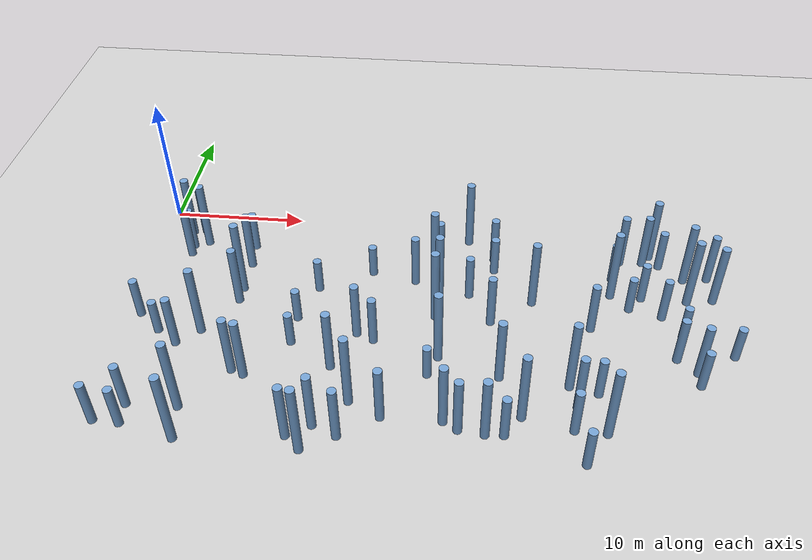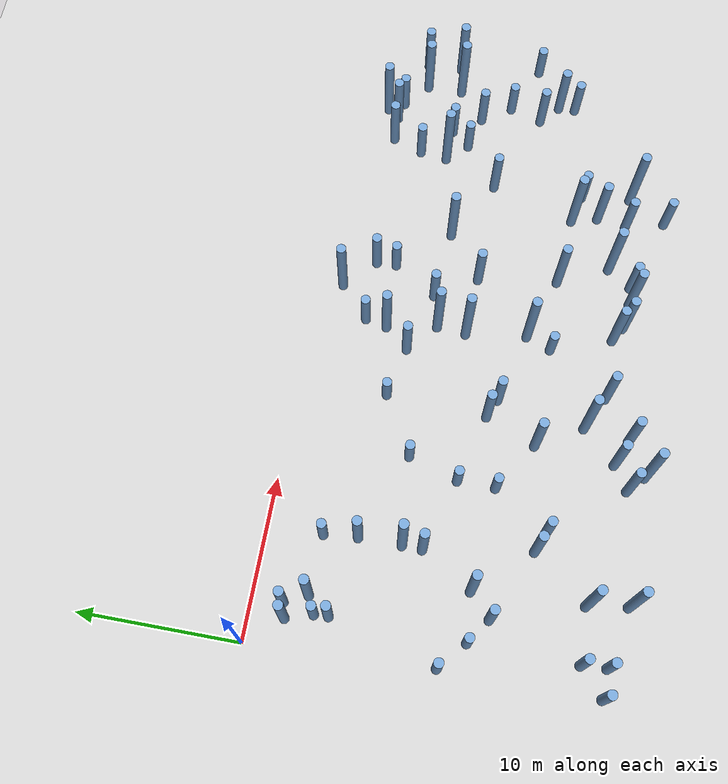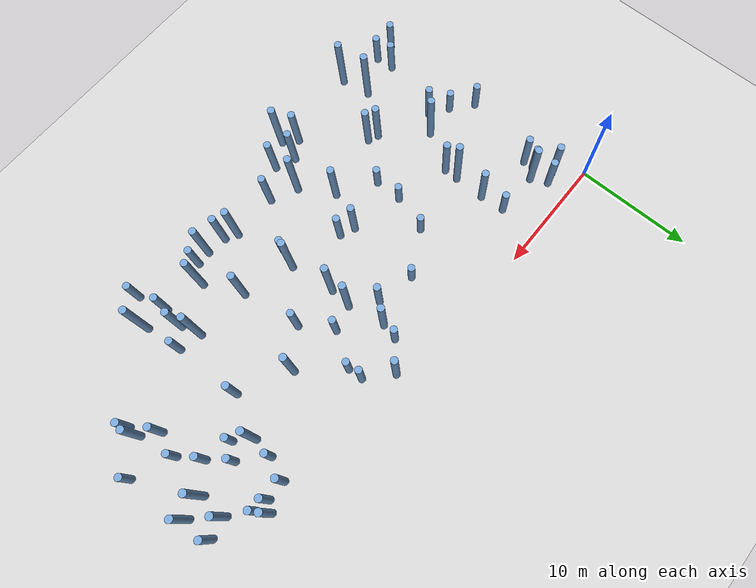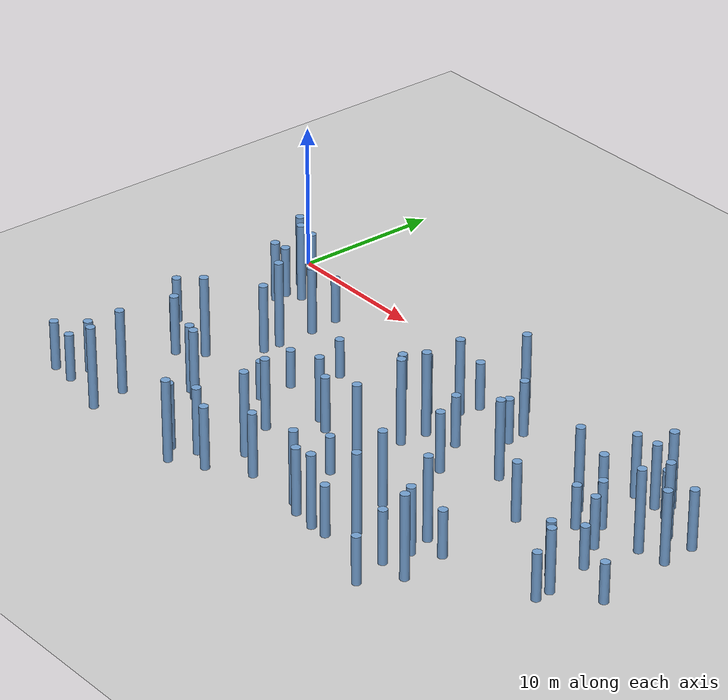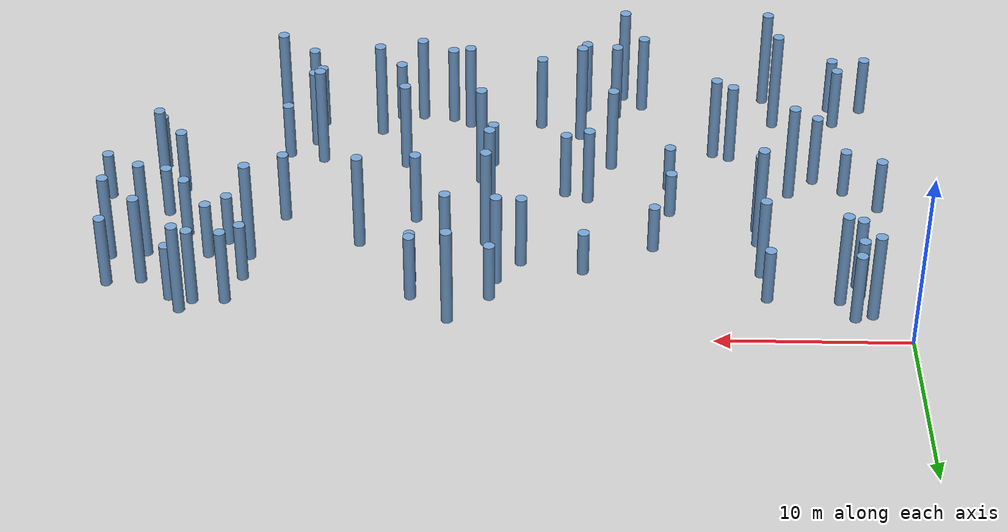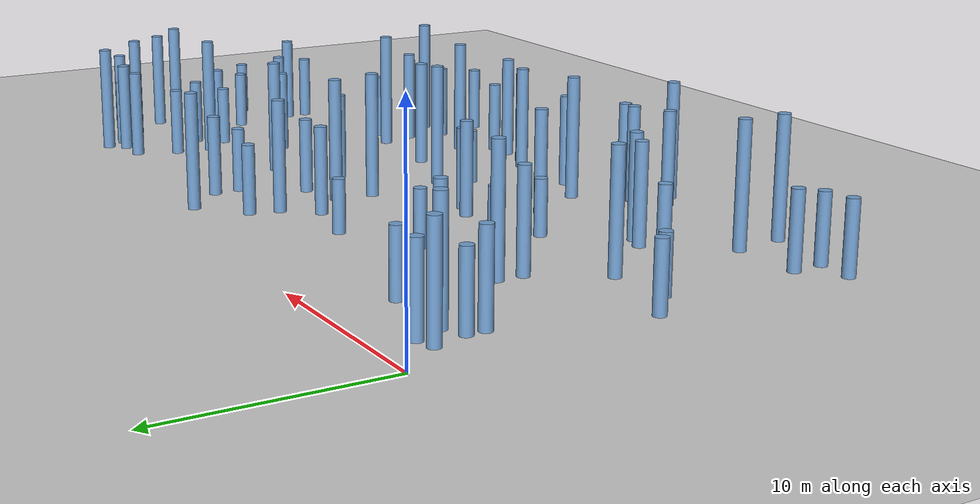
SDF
<sdf version="1.6">
 <world name="random_cylinder_world">
  <model name="ground_plane">
   <static>1</static>
   <link name="link">
    <collision name="collision">
     <geometry><plane><normal>0 0 1</normal><size>95.300000 95.300000</size></plane></geometry>
    </collision>
    <visual name="visual">
     <geometry><plane><normal>0 0 1</normal><size>95.300000 95.300000</size></plane></geometry>
     <material>
      <script><uri>file://media/materials/scripts/gazebo.material</uri><name>Gazebo/Grey</name></script>
     </material>
    </visual>
   </link>
  </model>
  <model name="cylinder_0003">
   <static>1</static>
   <pose>25.400087 -4.623986 1.535734 0 0 0</pose>
   <link name="link">
    <collision name="collision">
     <geometry><cylinder><radius>0.300000</radius><length>3.071469</length></cylinder></geometry>
    </collision>
    <visual name="visual">
     <geometry><cylinder><radius>0.300000</radius><length>3.071469</length></cylinder></geometry>
     <material><ambient>0.447 0.624 0.812 1</ambient><diffuse>0.447 0.624 0.812 1</diffuse></material>
    </visual>
   </link>
  </model>
  <model name="cylinder_0006">
   <static>1</static>
   <pose>37.342822 -8.503178 1.756261 0 0 0</pose>
   <link name="link">
    <collision name="collision">
     <geometry><cylinder><radius>0.300000</radius><length>3.512523</length></cylinder></geometry>
    </collision>
    <visual name="visual">
     <geometry><cylinder><radius>0.300000</radius><length>3.512523</length></cylinder></geometry>
     <material><ambient>0.447 0.624 0.812 1</ambient><diffuse>0.447 0.624 0.812 1</diffuse></material>
    </visual>
   </link>
  </model>
  <model name="cylinder_0013">
   <static>1</static>
   <pose>26.488561 -19.815314 1.756108 0 0 0</pose>
   <link name="link">
    <collision name="collision">
     <geometry><cylinder><radius>0.300000</radius><length>3.512217</length></cylinder></geometry>
    </collision>
    <visual name="visual">
     <geometry><cylinder><radius>0.300000</radius><length>3.512217</length></cylinder></geometry>
     <material><ambient>0.447 0.624 0.812 1</ambient><diffuse>0.447 0.624 0.812 1</diffuse></material>
    </visual>
   </link>
  </model>
  <model name="cylinder_0021">
   <static>1</static>
   <pose>41.162562 -6.502015 2.496331 0 0 0</pose>
   <link name="link">
    <collision name="collision">
     <geometry><cylinder><radius>0.300000</radius><length>4.992661</length></cylinder></geometry>
    </collision>
    <visual name="visual">
     <geometry><cylinder><radius>0.300000</radius><length>4.992661</length></cylinder></geometry>
     <material><ambient>0.447 0.624 0.812 1</ambient><diffuse>0.447 0.624 0.812 1</diffuse></material>
    </visual>
   </link>
  </model>
  <model name="cylinder_0024">
   <static>1</static>
   <pose>7.257771 -8.145522 2.987956 0 0 0</pose>
   <link name="link">
    <collision name="collision">
     <geometry><cylinder><radius>0.300000</radius><length>5.975913</length></cylinder></geometry>
    </collision>
    <visual name="visual">
     <geometry><cylinder><radius>0.300000</radius><length>5.975913</length></cylinder></geometry>
     <material><ambient>0.447 0.624 0.812 1</ambient><diffuse>0.447 0.624 0.812 1</diffuse></material>
    </visual>
   </link>
  </model>
  <model name="cylinder_0032">
   <static>1</static>
   <pose>12.769695 -7.644362 1.345859 0 0 0</pose>
   <link name="link">
    <collision name="collision">
     <geometry><cylinder><radius>0.300000</radius><length>2.691719</length></cylinder></geometry>
    </collision>
    <visual name="visual">
     <geometry><cylinder><radius>0.300000</radius><length>2.691719</length></cylinder></geometry>
     <material><ambient>0.447 0.624 0.812 1</ambient><diffuse>0.447 0.624 0.812 1</diffuse></material>
    </visual>
   </link>
  </model>
  <model name="cylinder_0034">
   <static>1</static>
   <pose>2.337418 -3.776096 1.756916 0 0 0</pose>
   <link name="link">
    <collision name="collision">
     <geometry><cylinder><radius>0.300000</radius><length>3.513832</length></cylinder></geometry>
    </collision>
    <visual name="visual">
     <geometry><cylinder><radius>0.300000</radius><length>3.513832</length></cylinder></geometry>
     <material><ambient>0.447 0.624 0.812 1</ambient><diffuse>0.447 0.624 0.812 1</diffuse></material>
    </visual>
   </link>
  </model>
  <model name="cylinder_0039">
   <static>1</static>
   <pose>37.041497 -2.067759 2.631288 0 0 0</pose>
   <link name="link">
    <collision name="collision">
     <geometry><cylinder><radius>0.300000</radius><length>5.262577</length></cylinder></geometry>
    </collision>
    <visual name="visual">
     <geometry><cylinder><radius>0.300000</radius><length>5.262577</length></cylinder></geometry>
     <material><ambient>0.447 0.624 0.812 1</ambient><diffuse>0.447 0.624 0.812 1</diffuse></material>
    </visual>
   </link>
  </model>
  <model name="cylinder_0044">
   <static>1</static>
   <pose>0.592058 -11.316370 1.572956 0 0 0</pose>
   <link name="link">
    <collision name="collision">
     <geometry><cylinder><radius>0.300000</radius><length>3.145912</length></cylinder></geometry>
    </collision>
    <visual name="visual">
     <geometry><cylinder><radius>0.300000</radius><length>3.145912</length></cylinder></geometry>
     <material><ambient>0.447 0.624 0.812 1</ambient><diffuse>0.447 0.624 0.812 1</diffuse></material>
    </visual>
   </link>
  </model>
  <model name="cylinder_0046">
   <static>1</static>
   <pose>36.449462 -2.827445 2.220992 0 0 0</pose>
   <link name="link">
    <collision name="collision">
     <geometry><cylinder><radius>0.300000</radius><length>4.441983</length></cylinder></geometry>
    </collision>
    <visual name="visual">
     <geometry><cylinder><radius>0.300000</radius><length>4.441983</length></cylinder></geometry>
     <material><ambient>0.447 0.624 0.812 1</ambient><diffuse>0.447 0.624 0.812 1</diffuse></material>
    </visual>
   </link>
  </model>
  <model name="cylinder_0047">
   <static>1</static>
   <pose>11.732520 -13.136620 1.326364 0 0 0</pose>
   <link name="link">
    <collision name="collision">
     <geometry><cylinder><radius>0.300000</radius><length>2.652729</length></cylinder></geometry>
    </collision>
    <visual name="visual">
     <geometry><cylinder><radius>0.300000</radius><length>2.652729</length></cylinder></geometry>
     <material><ambient>0.447 0.624 0.812 1</ambient><diffuse>0.447 0.624 0.812 1</diffuse></material>
    </visual>
   </link>
  </model>
  <model name="cylinder_0048">
   <static>1</static>
   <pose>21.289381 -15.260789 1.299075 0 0 0</pose>
   <link name="link">
    <collision name="collision">
     <geometry><cylinder><radius>0.300000</radius><length>2.598151</length></cylinder></geometry>
    </collision>
    <visual name="visual">
     <geometry><cylinder><radius>0.300000</radius><length>2.598151</length></cylinder></geometry>
     <material><ambient>0.447 0.624 0.812 1</ambient><diffuse>0.447 0.624 0.812 1</diffuse></material>
    </visual>
   </link>
  </model>
  <model name="cylinder_0051">
   <static>1</static>
   <pose>41.062041 -4.219425 2.053434 0 0 0</pose>
   <link name="link">
    <collision name="collision">
     <geometry><cylinder><radius>0.300000</radius><length>4.106868</length></cylinder></geometry>
    </collision>
    <visual name="visual">
     <geometry><cylinder><radius>0.300000</radius><length>4.106868</length></cylinder></geometry>
     <material><ambient>0.447 0.624 0.812 1</ambient><diffuse>0.447 0.624 0.812 1</diffuse></material>
    </visual>
   </link>
  </model>
  <model name="cylinder_0052">
   <static>1</static>
   <pose>21.289292 -3.367641 1.649210 0 0 0</pose>
   <link name="link">
    <collision name="collision">
     <geometry><cylinder><radius>0.300000</radius><length>3.298420</length></cylinder></geometry>
    </collision>
    <visual name="visual">
     <geometry><cylinder><radius>0.300000</radius><length>3.298420</length></cylinder></geometry>
     <material><ambient>0.447 0.624 0.812 1</ambient><diffuse>0.447 0.624 0.812 1</diffuse></material>
    </visual>
   </link>
  </model>
  <model name="cylinder_0059">
   <static>1</static>
   <pose>2.251523 -19.429712 1.798195 0 0 0</pose>
   <link name="link">
    <collision name="collision">
     <geometry><cylinder><radius>0.300000</radius><length>3.596389</length></cylinder></geometry>
    </collision>
    <visual name="visual">
     <geometry><cylinder><radius>0.300000</radius><length>3.596389</length></cylinder></geometry>
     <material><ambient>0.447 0.624 0.812 1</ambient><diffuse>0.447 0.624 0.812 1</diffuse></material>
    </visual>
   </link>
  </model>
  <model name="cylinder_0060">
   <static>1</static>
   <pose>5.650153 -19.351967 2.914306 0 0 0</pose>
   <link name="link">
    <collision name="collision">
     <geometry><cylinder><radius>0.300000</radius><length>5.828613</length></cylinder></geometry>
    </collision>
    <visual name="visual">
     <geometry><cylinder><radius>0.300000</radius><length>5.828613</length></cylinder></geometry>
     <material><ambient>0.447 0.624 0.812 1</ambient><diffuse>0.447 0.624 0.812 1</diffuse></material>
    </visual>
   </link>
  </model>
  <model name="cylinder_0065">
   <static>1</static>
   <pose>34.792740 -2.870810 2.163958 0 0 0</pose>
   <link name="link">
    <collision name="collision">
     <geometry><cylinder><radius>0.300000</radius><length>4.327917</length></cylinder></geometry>
    </collision>
    <visual name="visual">
     <geometry><cylinder><radius>0.300000</radius><length>4.327917</length></cylinder></geometry>
     <material><ambient>0.447 0.624 0.812 1</ambient><diffuse>0.447 0.624 0.812 1</diffuse></material>
    </visual>
   </link>
  </model>
  <model name="cylinder_0069">
   <static>1</static>
   <pose>21.893047 -13.679503 2.926847 0 0 0</pose>
   <link name="link">
    <collision name="collision">
     <geometry><cylinder><radius>0.300000</radius><length>5.853694</length></cylinder></geometry>
    </collision>
    <visual name="visual">
     <geometry><cylinder><radius>0.300000</radius><length>5.853694</length></cylinder></geometry>
     <material><ambient>0.447 0.624 0.812 1</ambient><diffuse>0.447 0.624 0.812 1</diffuse></material>
    </visual>
   </link>
  </model>
  <model name="cylinder_0070">
   <static>1</static>
   <pose>34.070242 -4.819793 1.674462 0 0 0</pose>
   <link name="link">
    <collision name="collision">
     <geometry><cylinder><radius>0.300000</radius><length>3.348925</length></cylinder></geometry>
    </collision>
    <visual name="visual">
     <geometry><cylinder><radius>0.300000</radius><length>3.348925</length></cylinder></geometry>
     <material><ambient>0.447 0.624 0.812 1</ambient><diffuse>0.447 0.624 0.812 1</diffuse></material>
    </visual>
   </link>
  </model>
  <model name="cylinder_0073">
   <static>1</static>
   <pose>41.866162 -11.896257 1.372190 0 0 0</pose>
   <link name="link">
    <collision name="collision">
     <geometry><cylinder><radius>0.300000</radius><length>2.744380</length></cylinder></geometry>
    </collision>
    <visual name="visual">
     <geometry><cylinder><radius>0.300000</radius><length>2.744380</length></cylinder></geometry>
     <material><ambient>0.447 0.624 0.812 1</ambient><diffuse>0.447 0.624 0.812 1</diffuse></material>
    </visual>
   </link>
  </model>
  <model name="cylinder_0078">
   <static>1</static>
   <pose>8.285230 -15.977573 2.356307 0 0 0</pose>
   <link name="link">
    <collision name="collision">
     <geometry><cylinder><radius>0.300000</radius><length>4.712614</length></cylinder></geometry>
    </collision>
    <visual name="visual">
     <geometry><cylinder><radius>0.300000</radius><length>4.712614</length></cylinder></geometry>
     <material><ambient>0.447 0.624 0.812 1</ambient><diffuse>0.447 0.624 0.812 1</diffuse></material>
    </visual>
   </link>
  </model>
  <model name="cylinder_0082">
   <static>1</static>
   <pose>3.369687 -3.270655 2.712815 0 0 0</pose>
   <link name="link">
    <collision name="collision">
     <geometry><cylinder><radius>0.300000</radius><length>5.425631</length></cylinder></geometry>
    </collision>
    <visual name="visual">
     <geometry><cylinder><radius>0.300000</radius><length>5.425631</length></cylinder></geometry>
     <material><ambient>0.447 0.624 0.812 1</ambient><diffuse>0.447 0.624 0.812 1</diffuse></material>
    </visual>
   </link>
  </model>
  <model name="cylinder_0087">
   <static>1</static>
   <pose>31.510922 -21.557376 1.628455 0 0 0</pose>
   <link name="link">
    <collision name="collision">
     <geometry><cylinder><radius>0.300000</radius><length>3.256910</length></cylinder></geometry>
    </collision>
    <visual name="visual">
     <geometry><cylinder><radius>0.300000</radius><length>3.256910</length></cylinder></geometry>
     <material><ambient>0.447 0.624 0.812 1</ambient><diffuse>0.447 0.624 0.812 1</diffuse></material>
    </visual>
   </link>
  </model>
  <model name="cylinder_0088">
   <static>1</static>
   <pose>2.315319 -12.811745 1.361996 0 0 0</pose>
   <link name="link">
    <collision name="collision">
     <geometry><cylinder><radius>0.300000</radius><length>2.723992</length></cylinder></geometry>
    </collision>
    <visual name="visual">
     <geometry><cylinder><radius>0.300000</radius><length>2.723992</length></cylinder></geometry>
     <material><ambient>0.447 0.624 0.812 1</ambient><diffuse>0.447 0.624 0.812 1</diffuse></material>
    </visual>
   </link>
  </model>
  <model name="cylinder_0091">
   <static>1</static>
   <pose>23.680675 -7.405819 1.782084 0 0 0</pose>
   <link name="link">
    <collision name="collision">
     <geometry><cylinder><radius>0.300000</radius><length>3.564169</length></cylinder></geometry>
    </collision>
    <visual name="visual">
     <geometry><cylinder><radius>0.300000</radius><length>3.564169</length></cylinder></geometry>
     <material><ambient>0.447 0.624 0.812 1</ambient><diffuse>0.447 0.624 0.812 1</diffuse></material>
    </visual>
   </link>
  </model>
  <model name="cylinder_0093">
   <static>1</static>
   <pose>16.131592 -11.937747 2.245154 0 0 0</pose>
   <link name="link">
    <collision name="collision">
     <geometry><cylinder><radius>0.300000</radius><length>4.490308</length></cylinder></geometry>
    </collision>
    <visual name="visual">
     <geometry><cylinder><radius>0.300000</radius><length>4.490308</length></cylinder></geometry>
     <material><ambient>0.447 0.624 0.812 1</ambient><diffuse>0.447 0.624 0.812 1</diffuse></material>
    </visual>
   </link>
  </model>
  <model name="cylinder_0102">
   <static>1</static>
   <pose>33.852152 -6.586515 2.906985 0 0 0</pose>
   <link name="link">
    <collision name="collision">
     <geometry><cylinder><radius>0.300000</radius><length>5.813970</length></cylinder></geometry>
    </collision>
    <visual name="visual">
     <geometry><cylinder><radius>0.300000</radius><length>5.813970</length></cylinder></geometry>
     <material><ambient>0.447 0.624 0.812 1</ambient><diffuse>0.447 0.624 0.812 1</diffuse></material>
    </visual>
   </link>
  </model>
  <model name="cylinder_0104">
   <static>1</static>
   <pose>1.822756 -2.127710 2.516312 0 0 0</pose>
   <link name="link">
    <collision name="collision">
     <geometry><cylinder><radius>0.300000</radius><length>5.032623</length></cylinder></geometry>
    </collision>
    <visual name="visual">
     <geometry><cylinder><radius>0.300000</radius><length>5.032623</length></cylinder></geometry>
     <material><ambient>0.447 0.624 0.812 1</ambient><diffuse>0.447 0.624 0.812 1</diffuse></material>
    </visual>
   </link>
  </model>
  <model name="cylinder_0105">
   <static>1</static>
   <pose>14.799435 -15.117011 2.473247 0 0 0</pose>
   <link name="link">
    <collision name="collision">
     <geometry><cylinder><radius>0.300000</radius><length>4.946493</length></cylinder></geometry>
    </collision>
    <visual name="visual">
     <geometry><cylinder><radius>0.300000</radius><length>4.946493</length></cylinder></geometry>
     <material><ambient>0.447 0.624 0.812 1</ambient><diffuse>0.447 0.624 0.812 1</diffuse></material>
    </visual>
   </link>
  </model>
  <model name="cylinder_0113">
   <static>1</static>
   <pose>23.386451 -1.478228 2.762739 0 0 0</pose>
   <link name="link">
    <collision name="collision">
     <geometry><cylinder><radius>0.300000</radius><length>5.525478</length></cylinder></geometry>
    </collision>
    <visual name="visual">
     <geometry><cylinder><radius>0.300000</radius><length>5.525478</length></cylinder></geometry>
     <material><ambient>0.447 0.624 0.812 1</ambient><diffuse>0.447 0.624 0.812 1</diffuse></material>
    </visual>
   </link>
  </model>
  <model name="cylinder_0121">
   <static>1</static>
   <pose>6.037207 -21.826309 2.851733 0 0 0</pose>
   <link name="link">
    <collision name="collision">
     <geometry><cylinder><radius>0.300000</radius><length>5.703466</length></cylinder></geometry>
    </collision>
    <visual name="visual">
     <geometry><cylinder><radius>0.300000</radius><length>5.703466</length></cylinder></geometry>
     <material><ambient>0.447 0.624 0.812 1</ambient><diffuse>0.447 0.624 0.812 1</diffuse></material>
    </visual>
   </link>
  </model>
  <model name="cylinder_0124">
   <static>1</static>
   <pose>37.929776 -12.475475 1.888538 0 0 0</pose>
   <link name="link">
    <collision name="collision">
     <geometry><cylinder><radius>0.300000</radius><length>3.777076</length></cylinder></geometry>
    </collision>
    <visual name="visual">
     <geometry><cylinder><radius>0.300000</radius><length>3.777076</length></cylinder></geometry>
     <material><ambient>0.447 0.624 0.812 1</ambient><diffuse>0.447 0.624 0.812 1</diffuse></material>
    </visual>
   </link>
  </model>
  <model name="cylinder_0128">
   <static>1</static>
   <pose>7.080046 -3.406542 1.571870 0 0 0</pose>
   <link name="link">
    <collision name="collision">
     <geometry><cylinder><radius>0.300000</radius><length>3.143740</length></cylinder></geometry>
    </collision>
    <visual name="visual">
     <geometry><cylinder><radius>0.300000</radius><length>3.143740</length></cylinder></geometry>
     <material><ambient>0.447 0.624 0.812 1</ambient><diffuse>0.447 0.624 0.812 1</diffuse></material>
    </visual>
   </link>
  </model>
  <model name="cylinder_0133">
   <static>1</static>
   <pose>26.044266 -15.105404 2.573613 0 0 0</pose>
   <link name="link">
    <collision name="collision">
     <geometry><cylinder><radius>0.300000</radius><length>5.147226</length></cylinder></geometry>
    </collision>
    <visual name="visual">
     <geometry><cylinder><radius>0.300000</radius><length>5.147226</length></cylinder></geometry>
     <material><ambient>0.447 0.624 0.812 1</ambient><diffuse>0.447 0.624 0.812 1</diffuse></material>
    </visual>
   </link>
  </model>
  <model name="cylinder_0140">
   <static>1</static>
   <pose>20.972011 -4.764908 2.645382 0 0 0</pose>
   <link name="link">
    <collision name="collision">
     <geometry><cylinder><radius>0.300000</radius><length>5.290764</length></cylinder></geometry>
    </collision>
    <visual name="visual">
     <geometry><cylinder><radius>0.300000</radius><length>5.290764</length></cylinder></geometry>
     <material><ambient>0.447 0.624 0.812 1</ambient><diffuse>0.447 0.624 0.812 1</diffuse></material>
    </visual>
   </link>
  </model>
  <model name="cylinder_0145">
   <static>1</static>
   <pose>30.641212 -15.499562 2.893133 0 0 0</pose>
   <link name="link">
    <collision name="collision">
     <geometry><cylinder><radius>0.300000</radius><length>5.786265</length></cylinder></geometry>
    </collision>
    <visual name="visual">
     <geometry><cylinder><radius>0.300000</radius><length>5.786265</length></cylinder></geometry>
     <material><ambient>0.447 0.624 0.812 1</ambient><diffuse>0.447 0.624 0.812 1</diffuse></material>
    </visual>
   </link>
  </model>
  <model name="cylinder_0155">
   <static>1</static>
   <pose>7.227832 -9.378220 2.378105 0 0 0</pose>
   <link name="link">
    <collision name="collision">
     <geometry><cylinder><radius>0.300000</radius><length>4.756211</length></cylinder></geometry>
    </collision>
    <visual name="visual">
     <geometry><cylinder><radius>0.300000</radius><length>4.756211</length></cylinder></geometry>
     <material><ambient>0.447 0.624 0.812 1</ambient><diffuse>0.447 0.624 0.812 1</diffuse></material>
    </visual>
   </link>
  </model>
  <model name="cylinder_0157">
   <static>1</static>
   <pose>28.200143 -7.827095 2.752070 0 0 0</pose>
   <link name="link">
    <collision name="collision">
     <geometry><cylinder><radius>0.300000</radius><length>5.504139</length></cylinder></geometry>
    </collision>
    <visual name="visual">
     <geometry><cylinder><radius>0.300000</radius><length>5.504139</length></cylinder></geometry>
     <material><ambient>0.447 0.624 0.812 1</ambient><diffuse>0.447 0.624 0.812 1</diffuse></material>
    </visual>
   </link>
  </model>
  <model name="cylinder_0162">
   <static>1</static>
   <pose>21.549404 -7.952345 2.908490 0 0 0</pose>
   <link name="link">
    <collision name="collision">
     <geometry><cylinder><radius>0.300000</radius><length>5.816980</length></cylinder></geometry>
    </collision>
    <visual name="visual">
     <geometry><cylinder><radius>0.300000</radius><length>5.816980</length></cylinder></geometry>
     <material><ambient>0.447 0.624 0.812 1</ambient><diffuse>0.447 0.624 0.812 1</diffuse></material>
    </visual>
   </link>
  </model>
  <model name="cylinder_0163">
   <static>1</static>
   <pose>2.379318 -4.641895 2.099099 0 0 0</pose>
   <link name="link">
    <collision name="collision">
     <geometry><cylinder><radius>0.300000</radius><length>4.198197</length></cylinder></geometry>
    </collision>
    <visual name="visual">
     <geometry><cylinder><radius>0.300000</radius><length>4.198197</length></cylinder></geometry>
     <material><ambient>0.447 0.624 0.812 1</ambient><diffuse>0.447 0.624 0.812 1</diffuse></material>
    </visual>
   </link>
  </model>
  <model name="cylinder_0164">
   <static>1</static>
   <pose>11.764676 -10.778414 1.310249 0 0 0</pose>
   <link name="link">
    <collision name="collision">
     <geometry><cylinder><radius>0.300000</radius><length>2.620497</length></cylinder></geometry>
    </collision>
    <visual name="visual">
     <geometry><cylinder><radius>0.300000</radius><length>2.620497</length></cylinder></geometry>
     <material><ambient>0.447 0.624 0.812 1</ambient><diffuse>0.447 0.624 0.812 1</diffuse></material>
    </visual>
   </link>
  </model>
  <model name="cylinder_0169">
   <static>1</static>
   <pose>19.695032 -6.283462 2.070440 0 0 0</pose>
   <link name="link">
    <collision name="collision">
     <geometry><cylinder><radius>0.300000</radius><length>4.140880</length></cylinder></geometry>
    </collision>
    <visual name="visual">
     <geometry><cylinder><radius>0.300000</radius><length>4.140880</length></cylinder></geometry>
     <material><ambient>0.447 0.624 0.812 1</ambient><diffuse>0.447 0.624 0.812 1</diffuse></material>
    </visual>
   </link>
  </model>
  <model name="cylinder_0176">
   <static>1</static>
   <pose>14.459822 -20.075022 2.307126 0 0 0</pose>
   <link name="link">
    <collision name="collision">
     <geometry><cylinder><radius>0.300000</radius><length>4.614252</length></cylinder></geometry>
    </collision>
    <visual name="visual">
     <geometry><cylinder><radius>0.300000</radius><length>4.614252</length></cylinder></geometry>
     <material><ambient>0.447 0.624 0.812 1</ambient><diffuse>0.447 0.624 0.812 1</diffuse></material>
    </visual>
   </link>
  </model>
  <model name="cylinder_0180">
   <static>1</static>
   <pose>25.307085 -10.028063 2.085140 0 0 0</pose>
   <link name="link">
    <collision name="collision">
     <geometry><cylinder><radius>0.300000</radius><length>4.170280</length></cylinder></geometry>
    </collision>
    <visual name="visual">
     <geometry><cylinder><radius>0.300000</radius><length>4.170280</length></cylinder></geometry>
     <material><ambient>0.447 0.624 0.812 1</ambient><diffuse>0.447 0.624 0.812 1</diffuse></material>
    </visual>
   </link>
  </model>
  <model name="cylinder_0188">
   <static>1</static>
   <pose>2.717203 -1.878692 2.012310 0 0 0</pose>
   <link name="link">
    <collision name="collision">
     <geometry><cylinder><radius>0.300000</radius><length>4.024621</length></cylinder></geometry>
    </collision>
    <visual name="visual">
     <geometry><cylinder><radius>0.300000</radius><length>4.024621</length></cylinder></geometry>
     <material><ambient>0.447 0.624 0.812 1</ambient><diffuse>0.447 0.624 0.812 1</diffuse></material>
    </visual>
   </link>
  </model>
  <model name="cylinder_0190">
   <static>1</static>
   <pose>27.543556 -18.298104 2.813191 0 0 0</pose>
   <link name="link">
    <collision name="collision">
     <geometry><cylinder><radius>0.300000</radius><length>5.626381</length></cylinder></geometry>
    </collision>
    <visual name="visual">
     <geometry><cylinder><radius>0.300000</radius><length>5.626381</length></cylinder></geometry>
     <material><ambient>0.447 0.624 0.812 1</ambient><diffuse>0.447 0.624 0.812 1</diffuse></material>
    </visual>
   </link>
  </model>
  <model name="cylinder_0191">
   <static>1</static>
   <pose>18.631439 -19.070829 2.213769 0 0 0</pose>
   <link name="link">
    <collision name="collision">
     <geometry><cylinder><radius>0.300000</radius><length>4.427538</length></cylinder></geometry>
    </collision>
    <visual name="visual">
     <geometry><cylinder><radius>0.300000</radius><length>4.427538</length></cylinder></geometry>
     <material><ambient>0.447 0.624 0.812 1</ambient><diffuse>0.447 0.624 0.812 1</diffuse></material>
    </visual>
   </link>
  </model>
  <model name="cylinder_0192">
   <static>1</static>
   <pose>36.047061 -6.707656 1.627035 0 0 0</pose>
   <link name="link">
    <collision name="collision">
     <geometry><cylinder><radius>0.300000</radius><length>3.254069</length></cylinder></geometry>
    </collision>
    <visual name="visual">
     <geometry><cylinder><radius>0.300000</radius><length>3.254069</length></cylinder></geometry>
     <material><ambient>0.447 0.624 0.812 1</ambient><diffuse>0.447 0.624 0.812 1</diffuse></material>
    </visual>
   </link>
  </model>
  <model name="cylinder_0196">
   <static>1</static>
   <pose>39.243683 -14.703005 1.623256 0 0 0</pose>
   <link name="link">
    <collision name="collision">
     <geometry><cylinder><radius>0.300000</radius><length>3.246513</length></cylinder></geometry>
    </collision>
    <visual name="visual">
     <geometry><cylinder><radius>0.300000</radius><length>3.246513</length></cylinder></geometry>
     <material><ambient>0.447 0.624 0.812 1</ambient><diffuse>0.447 0.624 0.812 1</diffuse></material>
    </visual>
   </link>
  </model>
  <model name="cylinder_0197">
   <static>1</static>
   <pose>32.915342 -19.143932 2.892927 0 0 0</pose>
   <link name="link">
    <collision name="collision">
     <geometry><cylinder><radius>0.300000</radius><length>5.785853</length></cylinder></geometry>
    </collision>
    <visual name="visual">
     <geometry><cylinder><radius>0.300000</radius><length>5.785853</length></cylinder></geometry>
     <material><ambient>0.447 0.624 0.812 1</ambient><diffuse>0.447 0.624 0.812 1</diffuse></material>
    </visual>
   </link>
  </model>
  <model name="cylinder_0200">
   <static>1</static>
   <pose>32.278458 -10.081249 2.029561 0 0 0</pose>
   <link name="link">
    <collision name="collision">
     <geometry><cylinder><radius>0.300000</radius><length>4.059122</length></cylinder></geometry>
    </collision>
    <visual name="visual">
     <geometry><cylinder><radius>0.300000</radius><length>4.059122</length></cylinder></geometry>
     <material><ambient>0.447 0.624 0.812 1</ambient><diffuse>0.447 0.624 0.812 1</diffuse></material>
    </visual>
   </link>
  </model>
  <model name="cylinder_0202">
   <static>1</static>
   <pose>32.525450 -15.961042 1.623327 0 0 0</pose>
   <link name="link">
    <collision name="collision">
     <geometry><cylinder><radius>0.300000</radius><length>3.246654</length></cylinder></geometry>
    </collision>
    <visual name="visual">
     <geometry><cylinder><radius>0.300000</radius><length>3.246654</length></cylinder></geometry>
     <material><ambient>0.447 0.624 0.812 1</ambient><diffuse>0.447 0.624 0.812 1</diffuse></material>
    </visual>
   </link>
  </model>
  <model name="cylinder_0206">
   <static>1</static>
   <pose>12.949468 -21.006072 2.290835 0 0 0</pose>
   <link name="link">
    <collision name="collision">
     <geometry><cylinder><radius>0.300000</radius><length>4.581671</length></cylinder></geometry>
    </collision>
    <visual name="visual">
     <geometry><cylinder><radius>0.300000</radius><length>4.581671</length></cylinder></geometry>
     <material><ambient>0.447 0.624 0.812 1</ambient><diffuse>0.447 0.624 0.812 1</diffuse></material>
    </visual>
   </link>
  </model>
  <model name="cylinder_0210">
   <static>1</static>
   <pose>35.089114 -7.893017 1.473882 0 0 0</pose>
   <link name="link">
    <collision name="collision">
     <geometry><cylinder><radius>0.300000</radius><length>2.947764</length></cylinder></geometry>
    </collision>
    <visual name="visual">
     <geometry><cylinder><radius>0.300000</radius><length>2.947764</length></cylinder></geometry>
     <material><ambient>0.447 0.624 0.812 1</ambient><diffuse>0.447 0.624 0.812 1</diffuse></material>
    </visual>
   </link>
  </model>
  <model name="cylinder_0216">
   <static>1</static>
   <pose>25.283492 -19.875220 2.522386 0 0 0</pose>
   <link name="link">
    <collision name="collision">
     <geometry><cylinder><radius>0.300000</radius><length>5.044771</length></cylinder></geometry>
    </collision>
    <visual name="visual">
     <geometry><cylinder><radius>0.300000</radius><length>5.044771</length></cylinder></geometry>
     <material><ambient>0.447 0.624 0.812 1</ambient><diffuse>0.447 0.624 0.812 1</diffuse></material>
    </visual>
   </link>
  </model>
  <model name="cylinder_0219">
   <static>1</static>
   <pose>16.448822 -17.981934 2.924911 0 0 0</pose>
   <link name="link">
    <collision name="collision">
     <geometry><cylinder><radius>0.300000</radius><length>5.849823</length></cylinder></geometry>
    </collision>
    <visual name="visual">
     <geometry><cylinder><radius>0.300000</radius><length>5.849823</length></cylinder></geometry>
     <material><ambient>0.447 0.624 0.812 1</ambient><diffuse>0.447 0.624 0.812 1</diffuse></material>
    </visual>
   </link>
  </model>
  <model name="cylinder_0224">
   <static>1</static>
   <pose>39.290230 -6.797398 2.832506 0 0 0</pose>
   <link name="link">
    <collision name="collision">
     <geometry><cylinder><radius>0.300000</radius><length>5.665011</length></cylinder></geometry>
    </collision>
    <visual name="visual">
     <geometry><cylinder><radius>0.300000</radius><length>5.665011</length></cylinder></geometry>
     <material><ambient>0.447 0.624 0.812 1</ambient><diffuse>0.447 0.624 0.812 1</diffuse></material>
    </visual>
   </link>
  </model>
  <model name="cylinder_0228">
   <static>1</static>
   <pose>37.655797 -3.081046 1.647842 0 0 0</pose>
   <link name="link">
    <collision name="collision">
     <geometry><cylinder><radius>0.300000</radius><length>3.295684</length></cylinder></geometry>
    </collision>
    <visual name="visual">
     <geometry><cylinder><radius>0.300000</radius><length>3.295684</length></cylinder></geometry>
     <material><ambient>0.447 0.624 0.812 1</ambient><diffuse>0.447 0.624 0.812 1</diffuse></material>
    </visual>
   </link>
  </model>
  <model name="cylinder_0237">
   <static>1</static>
   <pose>13.994245 -21.984392 2.821476 0 0 0</pose>
   <link name="link">
    <collision name="collision">
     <geometry><cylinder><radius>0.300000</radius><length>5.642952</length></cylinder></geometry>
    </collision>
    <visual name="visual">
     <geometry><cylinder><radius>0.300000</radius><length>5.642952</length></cylinder></geometry>
     <material><ambient>0.447 0.624 0.812 1</ambient><diffuse>0.447 0.624 0.812 1</diffuse></material>
    </visual>
   </link>
  </model>
  <model name="cylinder_0241">
   <static>1</static>
   <pose>21.385177 -9.813329 2.973759 0 0 0</pose>
   <link name="link">
    <collision name="collision">
     <geometry><cylinder><radius>0.300000</radius><length>5.947518</length></cylinder></geometry>
    </collision>
    <visual name="visual">
     <geometry><cylinder><radius>0.300000</radius><length>5.947518</length></cylinder></geometry>
     <material><ambient>0.447 0.624 0.812 1</ambient><diffuse>0.447 0.624 0.812 1</diffuse></material>
    </visual>
   </link>
  </model>
  <model name="cylinder_0247">
   <static>1</static>
   <pose>31.121198 -17.177194 2.307547 0 0 0</pose>
   <link name="link">
    <collision name="collision">
     <geometry><cylinder><radius>0.300000</radius><length>4.615093</length></cylinder></geometry>
    </collision>
    <visual name="visual">
     <geometry><cylinder><radius>0.300000</radius><length>4.615093</length></cylinder></geometry>
     <material><ambient>0.447 0.624 0.812 1</ambient><diffuse>0.447 0.624 0.812 1</diffuse></material>
    </visual>
   </link>
  </model>
  <model name="cylinder_0253">
   <static>1</static>
   <pose>30.851378 -19.065349 1.841161 0 0 0</pose>
   <link name="link">
    <collision name="collision">
     <geometry><cylinder><radius>0.300000</radius><length>3.682323</length></cylinder></geometry>
    </collision>
    <visual name="visual">
     <geometry><cylinder><radius>0.300000</radius><length>3.682323</length></cylinder></geometry>
     <material><ambient>0.447 0.624 0.812 1</ambient><diffuse>0.447 0.624 0.812 1</diffuse></material>
    </visual>
   </link>
  </model>
  <model name="cylinder_0254">
   <static>1</static>
   <pose>17.346960 -12.468104 1.927598 0 0 0</pose>
   <link name="link">
    <collision name="collision">
     <geometry><cylinder><radius>0.300000</radius><length>3.855195</length></cylinder></geometry>
    </collision>
    <visual name="visual">
     <geometry><cylinder><radius>0.300000</radius><length>3.855195</length></cylinder></geometry>
     <material><ambient>0.447 0.624 0.812 1</ambient><diffuse>0.447 0.624 0.812 1</diffuse></material>
    </visual>
   </link>
  </model>
  <model name="cylinder_0255">
   <static>1</static>
   <pose>22.614209 -19.076579 2.544462 0 0 0</pose>
   <link name="link">
    <collision name="collision">
     <geometry><cylinder><radius>0.300000</radius><length>5.088923</length></cylinder></geometry>
    </collision>
    <visual name="visual">
     <geometry><cylinder><radius>0.300000</radius><length>5.088923</length></cylinder></geometry>
     <material><ambient>0.447 0.624 0.812 1</ambient><diffuse>0.447 0.624 0.812 1</diffuse></material>
    </visual>
   </link>
  </model>
  <model name="cylinder_0256">
   <static>1</static>
   <pose>25.340738 -3.351081 1.910476 0 0 0</pose>
   <link name="link">
    <collision name="collision">
     <geometry><cylinder><radius>0.300000</radius><length>3.820951</length></cylinder></geometry>
    </collision>
    <visual name="visual">
     <geometry><cylinder><radius>0.300000</radius><length>3.820951</length></cylinder></geometry>
     <material><ambient>0.447 0.624 0.812 1</ambient><diffuse>0.447 0.624 0.812 1</diffuse></material>
    </visual>
   </link>
  </model>
  <model name="cylinder_0267">
   <static>1</static>
   <pose>2.353729 -20.973653 1.633414 0 0 0</pose>
   <link name="link">
    <collision name="collision">
     <geometry><cylinder><radius>0.300000</radius><length>3.266827</length></cylinder></geometry>
    </collision>
    <visual name="visual">
     <geometry><cylinder><radius>0.300000</radius><length>3.266827</length></cylinder></geometry>
     <material><ambient>0.447 0.624 0.812 1</ambient><diffuse>0.447 0.624 0.812 1</diffuse></material>
    </visual>
   </link>
  </model>
  <model name="cylinder_0274">
   <static>1</static>
   <pose>38.551556 -10.392367 1.448917 0 0 0</pose>
   <link name="link">
    <collision name="collision">
     <geometry><cylinder><radius>0.300000</radius><length>2.897833</length></cylinder></geometry>
    </collision>
    <visual name="visual">
     <geometry><cylinder><radius>0.300000</radius><length>2.897833</length></cylinder></geometry>
     <material><ambient>0.447 0.624 0.812 1</ambient><diffuse>0.447 0.624 0.812 1</diffuse></material>
    </visual>
   </link>
  </model>
  <model name="cylinder_0275">
   <static>1</static>
   <pose>3.860017 -13.893418 2.067562 0 0 0</pose>
   <link name="link">
    <collision name="collision">
     <geometry><cylinder><radius>0.300000</radius><length>4.135123</length></cylinder></geometry>
    </collision>
    <visual name="visual">
     <geometry><cylinder><radius>0.300000</radius><length>4.135123</length></cylinder></geometry>
     <material><ambient>0.447 0.624 0.812 1</ambient><diffuse>0.447 0.624 0.812 1</diffuse></material>
    </visual>
   </link>
  </model>
  <model name="cylinder_0278">
   <static>1</static>
   <pose>39.296698 -4.487659 2.588444 0 0 0</pose>
   <link name="link">
    <collision name="collision">
     <geometry><cylinder><radius>0.300000</radius><length>5.176887</length></cylinder></geometry>
    </collision>
    <visual name="visual">
     <geometry><cylinder><radius>0.300000</radius><length>5.176887</length></cylinder></geometry>
     <material><ambient>0.447 0.624 0.812 1</ambient><diffuse>0.447 0.624 0.812 1</diffuse></material>
    </visual>
   </link>
  </model>
  <model name="cylinder_0285">
   <static>1</static>
   <pose>16.118872 -20.784947 2.174672 0 0 0</pose>
   <link name="link">
    <collision name="collision">
     <geometry><cylinder><radius>0.300000</radius><length>4.349344</length></cylinder></geometry>
    </collision>
    <visual name="visual">
     <geometry><cylinder><radius>0.300000</radius><length>4.349344</length></cylinder></geometry>
     <material><ambient>0.447 0.624 0.812 1</ambient><diffuse>0.447 0.624 0.812 1</diffuse></material>
    </visual>
   </link>
  </model>
  <model name="cylinder_0287">
   <static>1</static>
   <pose>7.262008 -5.493829 2.343698 0 0 0</pose>
   <link name="link">
    <collision name="collision">
     <geometry><cylinder><radius>0.300000</radius><length>4.687395</length></cylinder></geometry>
    </collision>
    <visual name="visual">
     <geometry><cylinder><radius>0.300000</radius><length>4.687395</length></cylinder></geometry>
     <material><ambient>0.447 0.624 0.812 1</ambient><diffuse>0.447 0.624 0.812 1</diffuse></material>
    </visual>
   </link>
  </model>
  <model name="cylinder_0289">
   <static>1</static>
   <pose>23.574932 -19.655126 2.295813 0 0 0</pose>
   <link name="link">
    <collision name="collision">
     <geometry><cylinder><radius>0.300000</radius><length>4.591627</length></cylinder></geometry>
    </collision>
    <visual name="visual">
     <geometry><cylinder><radius>0.300000</radius><length>4.591627</length></cylinder></geometry>
     <material><ambient>0.447 0.624 0.812 1</ambient><diffuse>0.447 0.624 0.812 1</diffuse></material>
    </visual>
   </link>
  </model>
  <model name="cylinder_0294">
   <static>1</static>
   <pose>9.162854 -16.333170 2.444694 0 0 0</pose>
   <link name="link">
    <collision name="collision">
     <geometry><cylinder><radius>0.300000</radius><length>4.889388</length></cylinder></geometry>
    </collision>
    <visual name="visual">
     <geometry><cylinder><radius>0.300000</radius><length>4.889388</length></cylinder></geometry>
     <material><ambient>0.447 0.624 0.812 1</ambient><diffuse>0.447 0.624 0.812 1</diffuse></material>
    </visual>
   </link>
  </model>
  <model name="cylinder_0300">
   <static>1</static>
   <pose>16.476909 -5.585630 1.260538 0 0 0</pose>
   <link name="link">
    <collision name="collision">
     <geometry><cylinder><radius>0.300000</radius><length>2.521075</length></cylinder></geometry>
    </collision>
    <visual name="visual">
     <geometry><cylinder><radius>0.300000</radius><length>2.521075</length></cylinder></geometry>
     <material><ambient>0.447 0.624 0.812 1</ambient><diffuse>0.447 0.624 0.812 1</diffuse></material>
    </visual>
   </link>
  </model>
  <model name="cylinder_0301">
   <static>1</static>
   <pose>0.589915 -20.879528 1.697731 0 0 0</pose>
   <link name="link">
    <collision name="collision">
     <geometry><cylinder><radius>0.300000</radius><length>3.395461</length></cylinder></geometry>
    </collision>
    <visual name="visual">
     <geometry><cylinder><radius>0.300000</radius><length>3.395461</length></cylinder></geometry>
     <material><ambient>0.447 0.624 0.812 1</ambient><diffuse>0.447 0.624 0.812 1</diffuse></material>
    </visual>
   </link>
  </model>
  <model name="cylinder_0302">
   <static>1</static>
   <pose>5.283158 -12.571879 2.810635 0 0 0</pose>
   <link name="link">
    <collision name="collision">
     <geometry><cylinder><radius>0.300000</radius><length>5.621271</length></cylinder></geometry>
    </collision>
    <visual name="visual">
     <geometry><cylinder><radius>0.300000</radius><length>5.621271</length></cylinder></geometry>
     <material><ambient>0.447 0.624 0.812 1</ambient><diffuse>0.447 0.624 0.812 1</diffuse></material>
    </visual>
   </link>
  </model>
  <model name="cylinder_0303">
   <static>1</static>
   <pose>39.186954 -13.605829 2.194332 0 0 0</pose>
   <link name="link">
    <collision name="collision">
     <geometry><cylinder><radius>0.300000</radius><length>4.388663</length></cylinder></geometry>
    </collision>
    <visual name="visual">
     <geometry><cylinder><radius>0.300000</radius><length>4.388663</length></cylinder></geometry>
     <material><ambient>0.447 0.624 0.812 1</ambient><diffuse>0.447 0.624 0.812 1</diffuse></material>
    </visual>
   </link>
  </model>
 </world>
</sdf>
